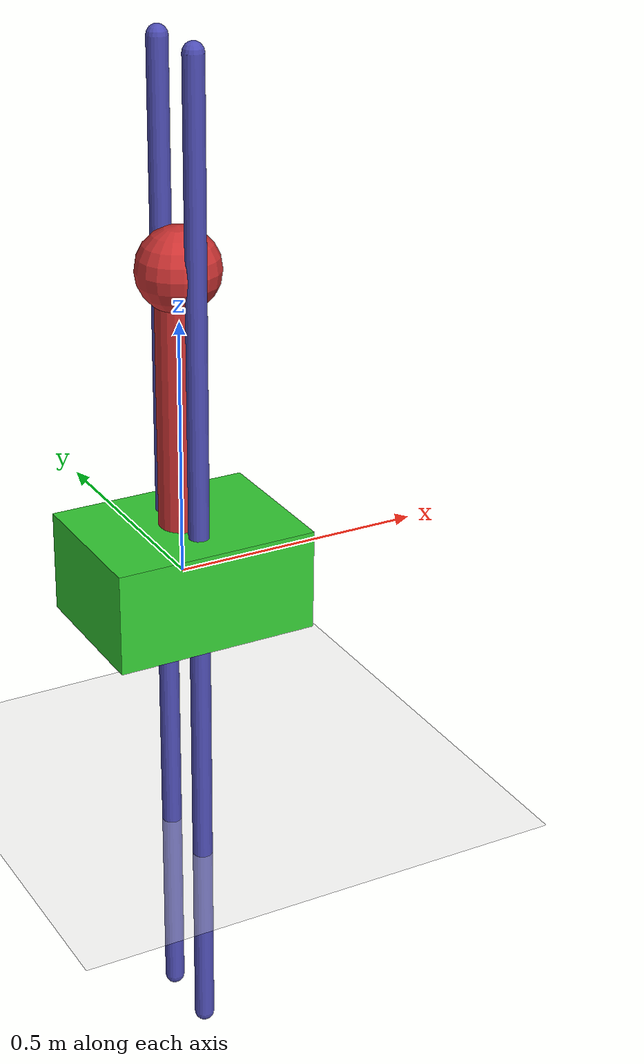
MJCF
<mujoco model="cartpole">
  <compiler angle="radian" inertiafromgeom="true"/>

  <visual>
    <global offwidth="1024" offheight="768"/>
  </visual>

  <default>
    <joint armature="0" damping="0.1" limited="true"/>
    <geom conaffinity="0" condim="3" contype="1" friction="1 0.1 0.1"
          rgba="0.8 0.6 0.4 1" density="1000"/>
  </default>

  <option gravity="0 0 -9.81" integrator="RK4" timestep="0.01"/>

  <worldbody>
    <light cutoff="100" diffuse="1 1 1" dir="-0 0 -1.3" directional="true"
          exponent="1" pos="0 0 1.3" specular=".1 .1 .1"/>

    <geom name="floor" pos="0 0 -0.6" size="2.5 2.5 0.05" type="plane"
          rgba="0.9 0.9 0.9 1"/>

    <geom name="rail1" type="capsule" pos="0  0.07 0" size="0.02 1"
          rgba="0.3 0.3 0.7 1"/>
    <geom name="rail2" type="capsule" pos="0 -0.07 0" size="0.02 1"
          rgba="0.3 0.3 0.7 1"/>

    <body name="cart" pos="0 0 0">
      <joint name="slider" type="slide" pos="0 0 0" axis="1 0 0"
             range="-1 1" damping="0.1"/>
      <geom name="cart" type="box" pos="0 0 0" size="0.2 0.15 0.1"
            rgba="0.2 0.8 0.2 1" mass="1"/>

      <body name="pole" pos="0 0 0">
        <joint name="hinge" type="hinge" pos="0 0 0" axis="0 1 0"
               range="-3.14 3.14" damping="0.01"/>
        <geom name="cpole" type="capsule" fromto="0 0 0 0 0 0.6"
              size="0.045" rgba="0.8 0.2 0.2 1" mass="0.1"/>
        <geom name="ball" type="sphere" pos="0 0 0.6" size="0.08"
              rgba="0.8 0.2 0.2 1" mass="0.05"/>
      </body>
    </body>
  </worldbody>

  <actuator>
    <motor joint="slider" gear="100" ctrllimited="true" ctrlrange="-10 10"/>
  </actuator>
</mujoco>
